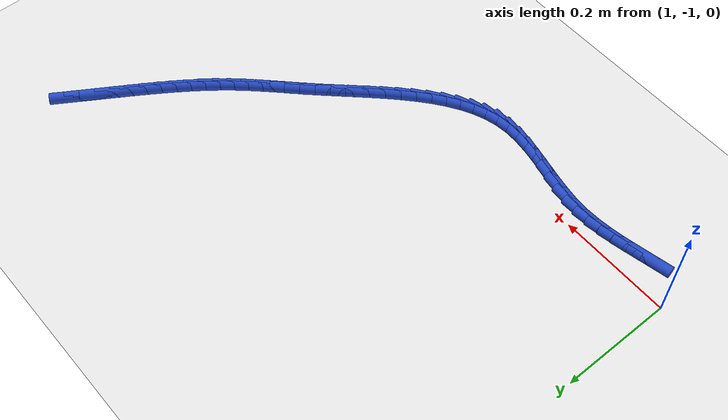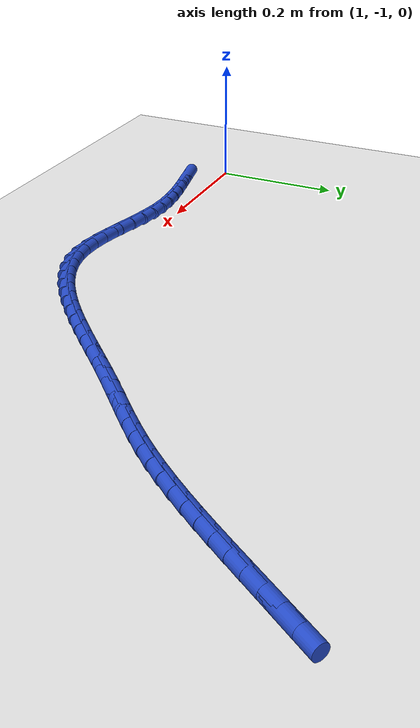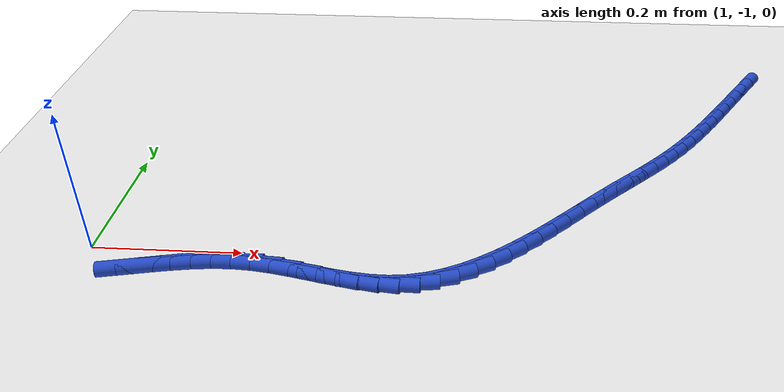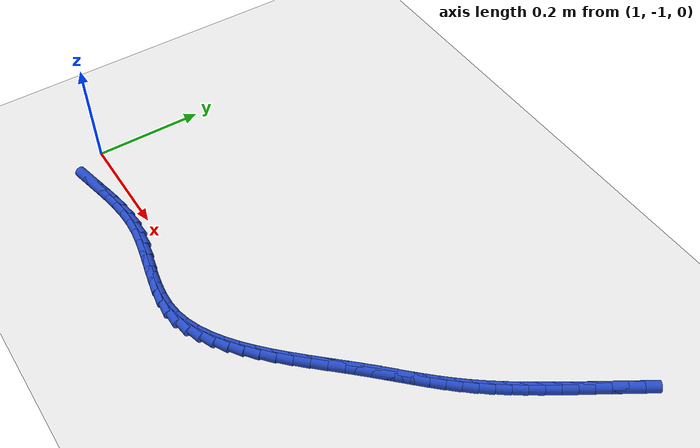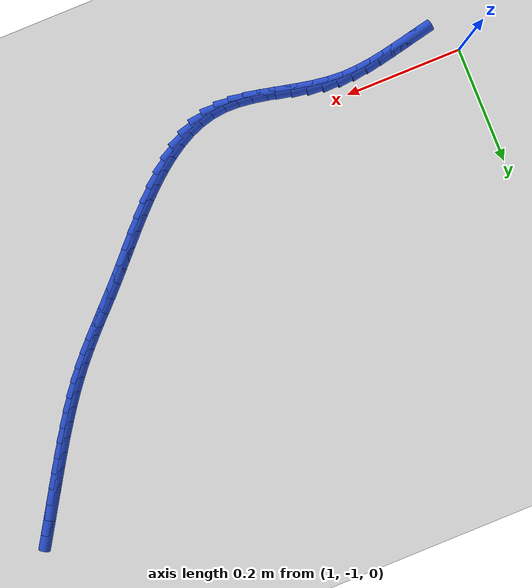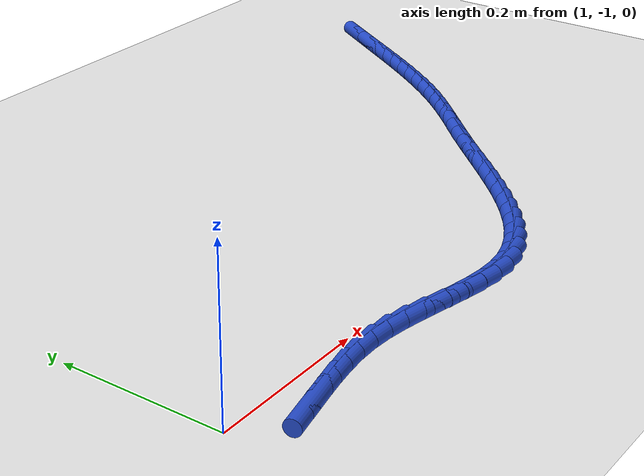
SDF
<sdf version="1.6">
 <world name="default">
  <model name="ground_plane">
   <static>1</static>
   <link name="link">
    <collision name="collision">
     <geometry><plane><normal>0 0 1</normal><size>100 100</size></plane></geometry>
     <surface><friction><ode><mu>100</mu><mu2>50</mu2></ode></friction></surface>
    </collision>
    <visual name="visual">
     <cast_shadows>0</cast_shadows>
     <geometry><plane><normal>0 0 1</normal><size>100 100</size></plane></geometry>
     <material>
      <script><uri>file://media/materials/scripts/gazebo.material</uri><name>Gazebo/WhiteGlow</name></script>
     </material>
    </visual>
   </link>
  </model>
  <model name="line">
   <link name="link_152">
    <pose>1.929865513520157 -0.5243240893605297 0.01 0 1.57 1.014326747862792</pose>
    <collision name="collision">
     <geometry><cylinder><radius>0.01</radius><length>0.08</length></cylinder></geometry>
    </collision>
    <visual name="visual">
     <material>
      <script><name>Gazebo/Blue</name><uri>file://media/materials/scripts/gazebo.material</uri></script>
     </material>
     <geometry><cylinder><radius>0.01</radius><length>0.08</length></cylinder></geometry>
    </visual>
   </link>
   <link name="link_153">
    <pose>1.916256683146312 -0.5462017511815453 0.01 0 1.57 1.0132449498023552</pose>
    <collision name="collision">
     <geometry><cylinder><radius>0.01</radius><length>0.08</length></cylinder></geometry>
    </collision>
    <visual name="visual">
     <material>
      <script><name>Gazebo/Blue</name><uri>file://media/materials/scripts/gazebo.material</uri></script>
     </material>
     <geometry><cylinder><radius>0.01</radius><length>0.08</length></cylinder></geometry>
    </visual>
   </link>
   <link name="link_154">
    <pose>1.9026149224757969 -0.5680795465264569 0.01 0 1.57 1.0137026851608126</pose>
    <collision name="collision">
     <geometry><cylinder><radius>0.01</radius><length>0.08</length></cylinder></geometry>
    </collision>
    <visual name="visual">
     <material>
      <script><name>Gazebo/Blue</name><uri>file://media/materials/scripts/gazebo.material</uri></script>
     </material>
     <geometry><cylinder><radius>0.01</radius><length>0.08</length></cylinder></geometry>
    </visual>
   </link>
   <link name="link_155">
    <pose>1.8889851382215201 -0.5899604361648894 0.01 0 1.57 1.0107659551419341</pose>
    <collision name="collision">
     <geometry><cylinder><radius>0.01</radius><length>0.08</length></cylinder></geometry>
    </collision>
    <visual name="visual">
     <material>
      <script><name>Gazebo/Blue</name><uri>file://media/materials/scripts/gazebo.material</uri></script>
     </material>
     <geometry><cylinder><radius>0.01</radius><length>0.08</length></cylinder></geometry>
    </visual>
   </link>
   <link name="link_156">
    <pose>1.8753075205480594 -0.6117751021293133 0.01 0 1.57 1.0037691925271297</pose>
    <collision name="collision">
     <geometry><cylinder><radius>0.01</radius><length>0.08</length></cylinder></geometry>
    </collision>
    <visual name="visual">
     <material>
      <script><name>Gazebo/Blue</name><uri>file://media/materials/scripts/gazebo.material</uri></script>
     </material>
     <geometry><cylinder><radius>0.01</radius><length>0.08</length></cylinder></geometry>
    </visual>
   </link>
   <link name="link_157">
    <pose>1.8615086293088063 -0.6334448183720464 0.01 0 1.57 0.9926635659929626</pose>
    <collision name="collision">
     <geometry><cylinder><radius>0.01</radius><length>0.08</length></cylinder></geometry>
    </collision>
    <visual name="visual">
     <material>
      <script><name>Gazebo/Blue</name><uri>file://media/materials/scripts/gazebo.material</uri></script>
     </material>
     <geometry><cylinder><radius>0.01</radius><length>0.08</length></cylinder></geometry>
    </visual>
   </link>
   <link name="link_158">
    <pose>1.84751502435715 -0.6548908588454085 0.01 0 1.57 0.97737805995347</pose>
    <collision name="collision">
     <geometry><cylinder><radius>0.01</radius><length>0.08</length></cylinder></geometry>
    </collision>
    <visual name="visual">
     <material>
      <script><name>Gazebo/Blue</name><uri>file://media/materials/scripts/gazebo.material</uri></script>
     </material>
     <geometry><cylinder><radius>0.01</radius><length>0.08</length></cylinder></geometry>
    </visual>
   </link>
   <link name="link_159">
    <pose>1.8332532655464817 -0.6760344975017185 0.01 0 1.57 0.9578242605941223</pose>
    <collision name="collision">
     <geometry><cylinder><radius>0.01</radius><length>0.08</length></cylinder></geometry>
    </collision>
    <visual name="visual">
     <material>
      <script><name>Gazebo/Blue</name><uri>file://media/materials/scripts/gazebo.material</uri></script>
     </material>
     <geometry><cylinder><radius>0.01</radius><length>0.08</length></cylinder></geometry>
    </visual>
   </link>
   <link name="link_160">
    <pose>1.8186499127301898 -0.6967970082932955 0.01 0 1.57 0.9339035845847452</pose>
    <collision name="collision">
     <geometry><cylinder><radius>0.01</radius><length>0.08</length></cylinder></geometry>
    </collision>
    <visual name="visual">
     <material>
      <script><name>Gazebo/Blue</name><uri>file://media/materials/scripts/gazebo.material</uri></script>
     </material>
     <geometry><cylinder><radius>0.01</radius><length>0.08</length></cylinder></geometry>
    </visual>
   </link>
   <link name="link_161">
    <pose>1.8036315257616657 -0.7170996651724587 0.01 0 1.57 0.9055174700729144</pose>
    <collision name="collision">
     <geometry><cylinder><radius>0.01</radius><length>0.08</length></cylinder></geometry>
    </collision>
    <visual name="visual">
     <material>
      <script><name>Gazebo/Blue</name><uri>file://media/materials/scripts/gazebo.material</uri></script>
     </material>
     <geometry><cylinder><radius>0.01</radius><length>0.08</length></cylinder></geometry>
    </visual>
   </link>
   <link name="link_162">
    <pose>1.788124664494298 -0.7368637420915267 0.01 0 1.57 0.8726139897233486</pose>
    <collision name="collision">
     <geometry><cylinder><radius>0.01</radius><length>0.08</length></cylinder></geometry>
    </collision>
    <visual name="visual">
     <material>
      <script><name>Gazebo/Blue</name><uri>file://media/materials/scripts/gazebo.material</uri></script>
     </material>
     <geometry><cylinder><radius>0.01</radius><length>0.08</length></cylinder></geometry>
    </visual>
   </link>
   <link name="link_163">
    <pose>1.7720562831489541 -0.7560113241648093 0.01 0 1.57 0.839240294721812</pose>
    <collision name="collision">
     <geometry><cylinder><radius>0.01</radius><length>0.08</length></cylinder></geometry>
    </collision>
    <visual name="visual">
     <material>
      <script><name>Gazebo/Blue</name><uri>file://media/materials/scripts/gazebo.material</uri></script>
     </material>
     <geometry><cylinder><radius>0.01</radius><length>0.08</length></cylinder></geometry>
    </visual>
   </link>
   <link name="link_164">
    <pose>1.755401499578754 -0.7745635627586591 0.01 0 1.57 0.813646575166753</pose>
    <collision name="collision">
     <geometry><cylinder><radius>0.01</radius><length>0.08</length></cylinder></geometry>
    </collision>
    <visual name="visual">
     <material>
      <script><name>Gazebo/Blue</name><uri>file://media/materials/scripts/gazebo.material</uri></script>
     </material>
     <geometry><cylinder><radius>0.01</radius><length>0.08</length></cylinder></geometry>
    </visual>
   </link>
   <link name="link_165">
    <pose>1.738229212970527 -0.7927345050989729 0.01 0 1.57 0.7970668150133301</pose>
    <collision name="collision">
     <geometry><cylinder><radius>0.01</radius><length>0.08</length></cylinder></geometry>
    </collision>
    <visual name="visual">
     <material>
      <script><name>Gazebo/Blue</name><uri>file://media/materials/scripts/gazebo.material</uri></script>
     </material>
     <geometry><cylinder><radius>0.01</radius><length>0.08</length></cylinder></geometry>
    </visual>
   </link>
   <link name="link_166">
    <pose>1.7206191310138474 -0.8107604300791234 0.01 0 1.57 0.7895277069773123</pose>
    <collision name="collision">
     <geometry><cylinder><radius>0.01</radius><length>0.08</length></cylinder></geometry>
    </collision>
    <visual name="visual">
     <material>
      <script><name>Gazebo/Blue</name><uri>file://media/materials/scripts/gazebo.material</uri></script>
     </material>
     <geometry><cylinder><radius>0.01</radius><length>0.08</length></cylinder></geometry>
    </visual>
   </link>
   <link name="link_167">
    <pose>1.702650961398285 -0.8288776165924843 0.01 0 1.57 0.7907993226573232</pose>
    <collision name="collision">
     <geometry><cylinder><radius>0.01</radius><length>0.08</length></cylinder></geometry>
    </collision>
    <visual name="visual">
     <material>
      <script><name>Gazebo/Blue</name><uri>file://media/materials/scripts/gazebo.material</uri></script>
     </material>
     <geometry><cylinder><radius>0.01</radius><length>0.08</length></cylinder></geometry>
    </visual>
   </link>
   <link name="link_168">
    <pose>1.684404411813413 -0.8473223435324297 0.01 0 1.57 0.8004219246363667</pose>
    <collision name="collision">
     <geometry><cylinder><radius>0.01</radius><length>0.08</length></cylinder></geometry>
    </collision>
    <visual name="visual">
     <material>
      <script><name>Gazebo/Blue</name><uri>file://media/materials/scripts/gazebo.material</uri></script>
     </material>
     <geometry><cylinder><radius>0.01</radius><length>0.08</length></cylinder></geometry>
    </visual>
   </link>
   <link name="link_169">
    <pose>1.6659590852050377 -0.8663304032134416 0.01 0 1.57 0.8131312852367362</pose>
    <collision name="collision">
     <geometry><cylinder><radius>0.01</radius><length>0.08</length></cylinder></geometry>
    </collision>
    <visual name="visual">
     <material>
      <script><name>Gazebo/Blue</name><uri>file://media/materials/scripts/gazebo.material</uri></script>
     </material>
     <geometry><cylinder><radius>0.01</radius><length>0.08</length></cylinder></geometry>
    </visual>
   </link>
   <link name="link_170">
    <pose>1.6473624353506735 -0.885988241525538 0.01 0 1.57 0.817767633375419</pose>
    <collision name="collision">
     <geometry><cylinder><radius>0.01</radius><length>0.08</length></cylinder></geometry>
    </collision>
    <visual name="visual">
     <material>
      <script><name>Gazebo/Blue</name><uri>file://media/materials/scripts/gazebo.material</uri></script>
     </material>
     <geometry><cylinder><radius>0.01</radius><length>0.08</length></cylinder></geometry>
    </visual>
   </link>
   <link name="link_171">
    <pose>1.628584550172781 -0.9060229073839366 0.01 0 1.57 0.8131540078958909</pose>
    <collision name="collision">
     <geometry><cylinder><radius>0.01</radius><length>0.08</length></cylinder></geometry>
    </collision>
    <visual name="visual">
     <material>
      <script><name>Gazebo/Blue</name><uri>file://media/materials/scripts/gazebo.material</uri></script>
     </material>
     <geometry><cylinder><radius>0.01</radius><length>0.08</length></cylinder></geometry>
    </visual>
   </link>
   <link name="link_172">
    <pose>1.6095841161773383 -0.926108485323245 0.01 0 1.57 0.7993775483614128</pose>
    <collision name="collision">
     <geometry><cylinder><radius>0.01</radius><length>0.08</length></cylinder></geometry>
    </collision>
    <visual name="visual">
     <material>
      <script><name>Gazebo/Blue</name><uri>file://media/materials/scripts/gazebo.material</uri></script>
     </material>
     <geometry><cylinder><radius>0.01</radius><length>0.08</length></cylinder></geometry>
    </visual>
   </link>
   <link name="link_173">
    <pose>1.5903198198703221 -0.9459190598780681 0.01 0 1.57 0.7761198195406822</pose>
    <collision name="collision">
     <geometry><cylinder><radius>0.01</radius><length>0.08</length></cylinder></geometry>
    </collision>
    <visual name="visual">
     <material>
      <script><name>Gazebo/Blue</name><uri>file://media/materials/scripts/gazebo.material</uri></script>
     </material>
     <geometry><cylinder><radius>0.01</radius><length>0.08</length></cylinder></geometry>
    </visual>
   </link>
   <link name="link_174">
    <pose>1.5707503477577094 -0.9651287155830134 0.01 0 1.57 0.742670465519687</pose>
    <collision name="collision">
     <geometry><cylinder><radius>0.01</radius><length>0.08</length></cylinder></geometry>
    </collision>
    <visual name="visual">
     <material>
      <script><name>Gazebo/Blue</name><uri>file://media/materials/scripts/gazebo.material</uri></script>
     </material>
     <geometry><cylinder><radius>0.01</radius><length>0.08</length></cylinder></geometry>
    </visual>
   </link>
   <link name="link_175">
    <pose>1.550834386345477 -0.9834115369726874 0.01 0 1.57 0.6979348600627815</pose>
    <collision name="collision">
     <geometry><cylinder><radius>0.01</radius><length>0.08</length></cylinder></geometry>
    </collision>
    <visual name="visual">
     <material>
      <script><name>Gazebo/Blue</name><uri>file://media/materials/scripts/gazebo.material</uri></script>
     </material>
     <geometry><cylinder><radius>0.01</radius><length>0.08</length></cylinder></geometry>
    </visual>
   </link>
   <link name="link_176">
    <pose>1.5305306221396016 -1.0004416085816965 0.01 0 1.57 0.64046121580141</pose>
    <collision name="collision">
     <geometry><cylinder><radius>0.01</radius><length>0.08</length></cylinder></geometry>
    </collision>
    <visual name="visual">
     <material>
      <script><name>Gazebo/Blue</name><uri>file://media/materials/scripts/gazebo.material</uri></script>
     </material>
     <geometry><cylinder><radius>0.01</radius><length>0.08</length></cylinder></geometry>
    </visual>
   </link>
   <link name="link_177">
    <pose>1.5097977416460602 -1.0158930149446472 0.01 0 1.57 0.5685334668471758</pose>
    <collision name="collision">
     <geometry><cylinder><radius>0.01</radius><length>0.08</length></cylinder></geometry>
    </collision>
    <visual name="visual">
     <material>
      <script><name>Gazebo/Blue</name><uri>file://media/materials/scripts/gazebo.material</uri></script>
     </material>
     <geometry><cylinder><radius>0.01</radius><length>0.08</length></cylinder></geometry>
    </visual>
   </link>
   <link name="link_178">
    <pose>1.48859443137083 -1.0294398405961467 0.01 0 1.57 0.4804070465492867</pose>
    <collision name="collision">
     <geometry><cylinder><radius>0.01</radius><length>0.08</length></cylinder></geometry>
    </collision>
    <visual name="visual">
     <material>
      <script><name>Gazebo/Blue</name><uri>file://media/materials/scripts/gazebo.material</uri></script>
     </material>
     <geometry><cylinder><radius>0.01</radius><length>0.08</length></cylinder></geometry>
    </visual>
   </link>
   <link name="link_179">
    <pose>1.4668793778198879 -1.040756170070801 0.01 0 1.57 0.3747899310341754</pose>
    <collision name="collision">
     <geometry><cylinder><radius>0.01</radius><length>0.08</length></cylinder></geometry>
    </collision>
    <visual name="visual">
     <material>
      <script><name>Gazebo/Blue</name><uri>file://media/materials/scripts/gazebo.material</uri></script>
     </material>
     <geometry><cylinder><radius>0.01</radius><length>0.08</length></cylinder></geometry>
    </visual>
   </link>
   <link name="link_180">
    <pose>1.4446112674992106 -1.0495160879032175 0.01 0 1.57 0.2516352880104511</pose>
    <collision name="collision">
     <geometry><cylinder><radius>0.01</radius><length>0.08</length></cylinder></geometry>
    </collision>
    <visual name="visual">
     <material>
      <script><name>Gazebo/Blue</name><uri>file://media/materials/scripts/gazebo.material</uri></script>
     </material>
     <geometry><cylinder><radius>0.01</radius><length>0.08</length></cylinder></geometry>
    </visual>
   </link>
   <link name="link_181">
    <pose>1.4217487869147745 -1.0553936786280018 0.01 0 1.57 0.1132555609689114</pose>
    <collision name="collision">
     <geometry><cylinder><radius>0.01</radius><length>0.08</length></cylinder></geometry>
    </collision>
    <visual name="visual">
     <material>
      <script><name>Gazebo/Blue</name><uri>file://media/materials/scripts/gazebo.material</uri></script>
     </material>
     <geometry><cylinder><radius>0.01</radius><length>0.08</length></cylinder></geometry>
    </visual>
   </link>
   <link name="link_182">
    <pose>1.3982510688755612 -1.058066362998722 0.01 0 1.57 -0.02066405519911108</pose>
    <collision name="collision">
     <geometry><cylinder><radius>0.01</radius><length>0.08</length></cylinder></geometry>
    </collision>
    <visual name="visual">
     <material>
      <script><name>Gazebo/Blue</name><uri>file://media/materials/scripts/gazebo.material</uri></script>
     </material>
     <geometry><cylinder><radius>0.01</radius><length>0.08</length></cylinder></geometry>
    </visual>
   </link>
   <link name="link_183">
    <pose>1.3741248949615887 -1.0575677474370568 0.01 0 1.57 -0.11981661800758837</pose>
    <collision name="collision">
     <geometry><cylinder><radius>0.01</radius><length>0.08</length></cylinder></geometry>
    </collision>
    <visual name="visual">
     <material>
      <script><name>Gazebo/Blue</name><uri>file://media/materials/scripts/gazebo.material</uri></script>
     </material>
     <geometry><cylinder><radius>0.01</radius><length>0.08</length></cylinder></geometry>
    </visual>
   </link>
   <link name="link_184">
    <pose>1.3494663531350313 -1.0545990243842338 0.01 0 1.57 -0.183836741275244</pose>
    <collision name="collision">
     <geometry><cylinder><radius>0.01</radius><length>0.08</length></cylinder></geometry>
    </collision>
    <visual name="visual">
     <material>
      <script><name>Gazebo/Blue</name><uri>file://media/materials/scripts/gazebo.material</uri></script>
     </material>
     <geometry><cylinder><radius>0.01</radius><length>0.08</length></cylinder></geometry>
    </visual>
   </link>
   <link name="link_185">
    <pose>1.324381354622456 -1.0499348174721497 0.01 0 1.57 -0.21639439546106976</pose>
    <collision name="collision">
     <geometry><cylinder><radius>0.01</radius><length>0.08</length></cylinder></geometry>
    </collision>
    <visual name="visual">
     <material>
      <script><name>Gazebo/Blue</name><uri>file://media/materials/scripts/gazebo.material</uri></script>
     </material>
     <geometry><cylinder><radius>0.01</radius><length>0.08</length></cylinder></geometry>
    </visual>
   </link>
   <link name="link_186">
    <pose>1.298975810650431 -1.0443497503327013 0.01 0 1.57 -0.22007933687738696</pose>
    <collision name="collision">
     <geometry><cylinder><radius>0.01</radius><length>0.08</length></cylinder></geometry>
    </collision>
    <visual name="visual">
     <material>
      <script><name>Gazebo/Blue</name><uri>file://media/materials/scripts/gazebo.material</uri></script>
     </material>
     <geometry><cylinder><radius>0.01</radius><length>0.08</length></cylinder></geometry>
    </visual>
   </link>
   <link name="link_187">
    <pose>1.2733556324455235 -1.0386184465977852 0.01 0 1.57 -0.19579315487680293</pose>
    <collision name="collision">
     <geometry><cylinder><radius>0.01</radius><length>0.08</length></cylinder></geometry>
    </collision>
    <visual name="visual">
     <material>
      <script><name>Gazebo/Blue</name><uri>file://media/materials/scripts/gazebo.material</uri></script>
     </material>
     <geometry><cylinder><radius>0.01</radius><length>0.08</length></cylinder></geometry>
    </visual>
   </link>
   <link name="link_188">
    <pose>1.247626731234302 -1.0335155298992995 0.01 0 1.57 -0.14280896540722268</pose>
    <collision name="collision">
     <geometry><cylinder><radius>0.01</radius><length>0.08</length></cylinder></geometry>
    </collision>
    <visual name="visual">
     <material>
      <script><name>Gazebo/Blue</name><uri>file://media/materials/scripts/gazebo.material</uri></script>
     </material>
     <geometry><cylinder><radius>0.01</radius><length>0.08</length></cylinder></geometry>
    </visual>
   </link>
   <link name="link_189">
    <pose>1.2218950182433344 -1.02981562386914 0.01 0 1.57 -0.06009266762192163</pose>
    <collision name="collision">
     <geometry><cylinder><radius>0.01</radius><length>0.08</length></cylinder></geometry>
    </collision>
    <visual name="visual">
     <material>
      <script><name>Gazebo/Blue</name><uri>file://media/materials/scripts/gazebo.material</uri></script>
     </material>
     <geometry><cylinder><radius>0.01</radius><length>0.08</length></cylinder></geometry>
    </visual>
   </link>
   <link name="link_190">
    <pose>1.1962643902620924 -1.0282735544101411 0.01 0 1.57 0.031426098821408045</pose>
    <collision name="collision">
     <geometry><cylinder><radius>0.01</radius><length>0.08</length></cylinder></geometry>
    </collision>
    <visual name="visual">
     <material>
      <script><name>Gazebo/Blue</name><uri>file://media/materials/scripts/gazebo.material</uri></script>
     </material>
     <geometry><cylinder><radius>0.01</radius><length>0.08</length></cylinder></geometry>
    </visual>
   </link>
   <link name="link_191">
    <pose>1.170780799027122 -1.0290746680104947 0.01 0 1.57 0.1056345175302629</pose>
    <collision name="collision">
     <geometry><cylinder><radius>0.01</radius><length>0.08</length></cylinder></geometry>
    </collision>
    <visual name="visual">
     <material>
      <script><name>Gazebo/Blue</name><uri>file://media/materials/scripts/gazebo.material</uri></script>
     </material>
     <geometry><cylinder><radius>0.01</radius><length>0.08</length></cylinder></geometry>
    </visual>
   </link>
   <link name="link_192">
    <pose>1.1454249552638123 -1.0317631276410952 0.01 0 1.57 0.16041665970108368</pose>
    <collision name="collision">
     <geometry><cylinder><radius>0.01</radius><length>0.08</length></cylinder></geometry>
    </collision>
    <visual name="visual">
     <material>
      <script><name>Gazebo/Blue</name><uri>file://media/materials/scripts/gazebo.material</uri></script>
     </material>
     <geometry><cylinder><radius>0.01</radius><length>0.08</length></cylinder></geometry>
    </visual>
   </link>
   <link name="link_193">
    <pose>1.1201740896324097 -1.0358488944667992 0.01 0 1.57 0.1958403284902677</pose>
    <collision name="collision">
     <geometry><cylinder><radius>0.01</radius><length>0.08</length></cylinder></geometry>
    </collision>
    <visual name="visual">
     <material>
      <script><name>Gazebo/Blue</name><uri>file://media/materials/scripts/gazebo.material</uri></script>
     </material>
     <geometry><cylinder><radius>0.01</radius><length>0.08</length></cylinder></geometry>
    </visual>
   </link>
   <link name="link_194">
    <pose>1.095005432793159 -1.0408419296524622 0.01 0 1.57 0.21222465199702306</pose>
    <collision name="collision">
     <geometry><cylinder><radius>0.01</radius><length>0.08</length></cylinder></geometry>
    </collision>
    <visual name="visual">
     <material>
      <script><name>Gazebo/Blue</name><uri>file://media/materials/scripts/gazebo.material</uri></script>
     </material>
     <geometry><cylinder><radius>0.01</radius><length>0.08</length></cylinder></geometry>
    </visual>
   </link>
   <link name="link_195">
    <pose>1.0698962154063065 -1.0462521943629408 0.01 0 1.57 0.20974938702281978</pose>
    <collision name="collision">
     <geometry><cylinder><radius>0.01</radius><length>0.08</length></cylinder></geometry>
    </collision>
    <visual name="visual">
     <material>
      <script><name>Gazebo/Blue</name><uri>file://media/materials/scripts/gazebo.material</uri></script>
     </material>
     <geometry><cylinder><radius>0.01</radius><length>0.08</length></cylinder></geometry>
    </visual>
   </link>
  </model>
 </world>
</sdf>
